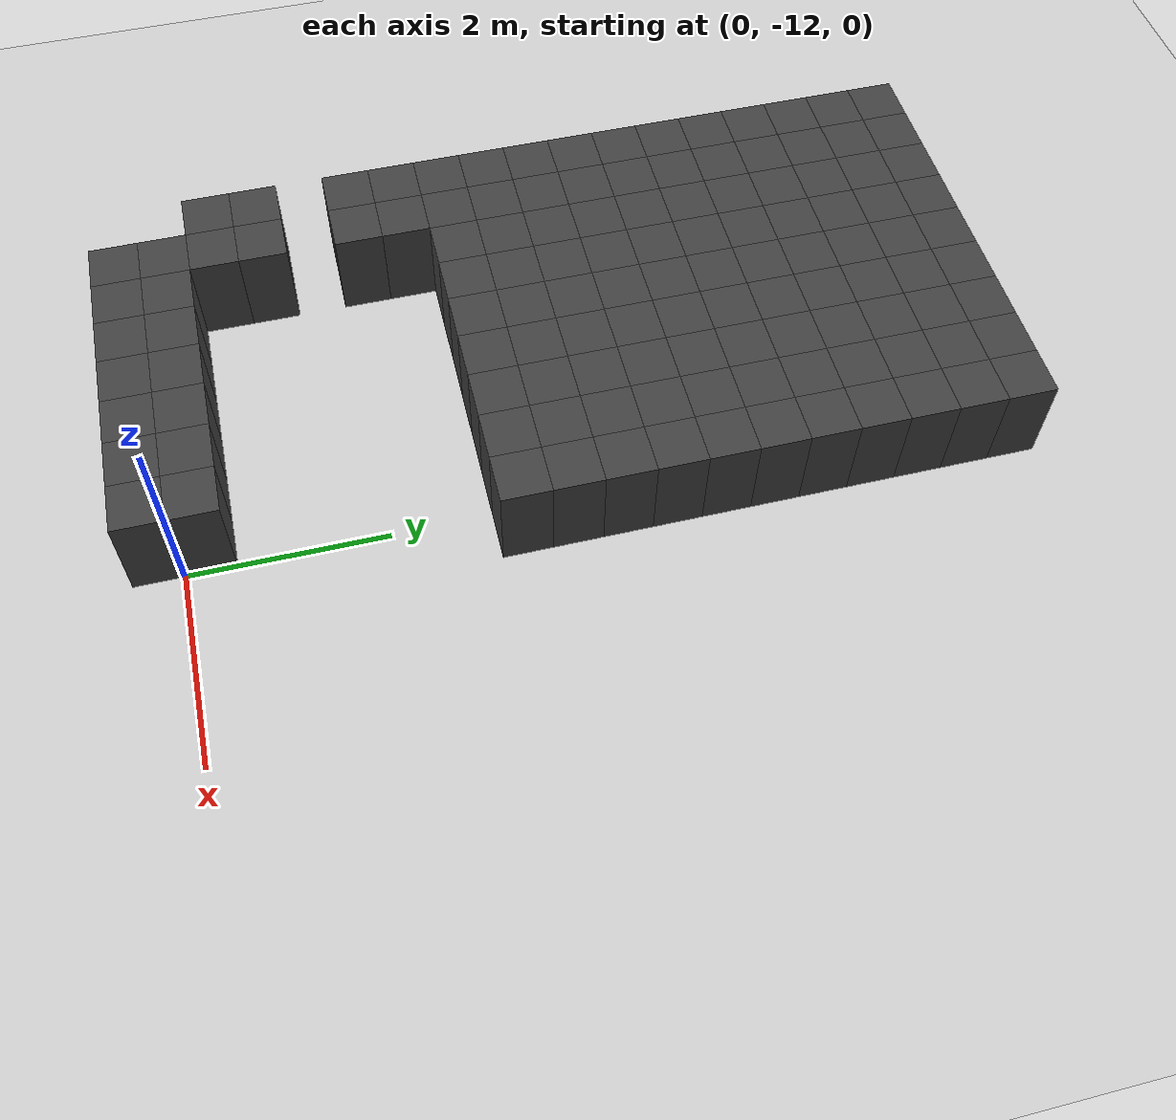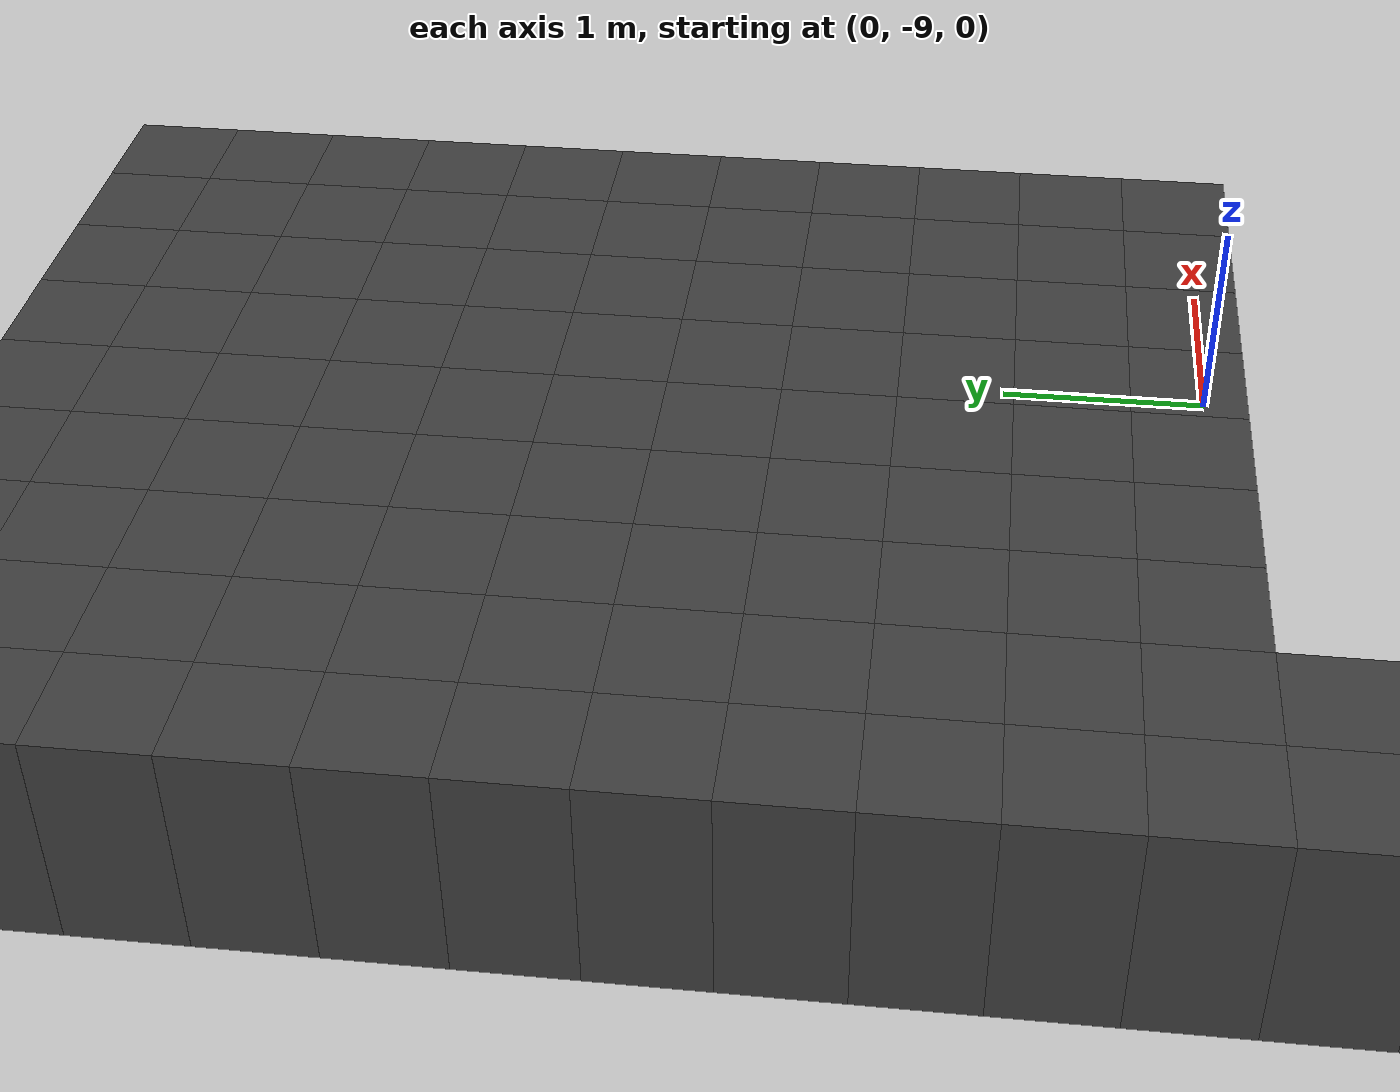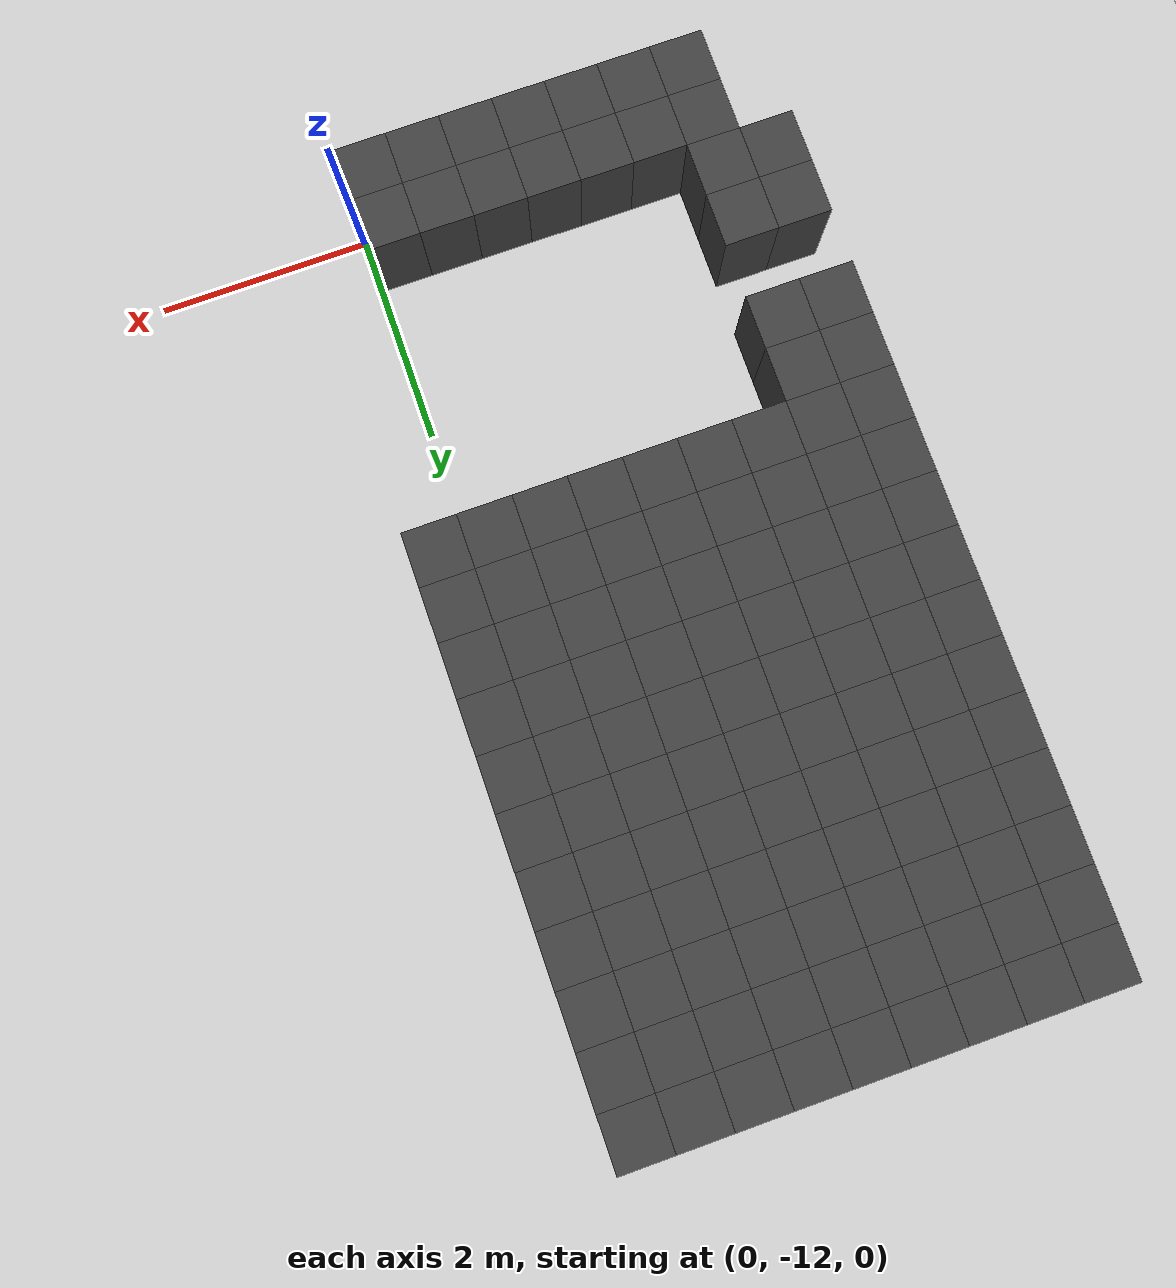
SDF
<sdf version="1.7">
 <world name="map_14510">
  <model name="ground_plane">
   <static>true</static>
   <link name="link">
    <collision name="collision">
     <geometry><plane><normal>0 0 1</normal><size>200 200</size></plane></geometry>
    </collision>
    <visual name="visual">
     <geometry><plane><normal>0 0 1</normal><size>200 200</size></plane></geometry>
     <material><ambient>0.8 0.8 0.8 1</ambient><diffuse>0.8 0.8 0.8 1</diffuse></material>
    </visual>
   </link>
  </model>
  <model name="maze_environment">
   <static>true</static>
   <link name="wall_1099">
    <pose>-3.750 -3.750 0.500 0 0 0</pose>
    <collision name="col"><geometry><box><size>0.5 0.5 1.0</size></box></geometry></collision>
    <visual name="vis">
     <geometry><box><size>0.5 0.5 1.0</size></box></geometry>
     <material><ambient>0.15 0.15 0.15 1</ambient><diffuse>0.25 0.25 0.25 1</diffuse></material>
    </visual>
   </link>
   <link name="wall_1100">
    <pose>-3.250 -3.750 0.500 0 0 0</pose>
    <collision name="col"><geometry><box><size>0.5 0.5 1.0</size></box></geometry></collision>
    <visual name="vis">
     <geometry><box><size>0.5 0.5 1.0</size></box></geometry>
     <material><ambient>0.15 0.15 0.15 1</ambient><diffuse>0.25 0.25 0.25 1</diffuse></material>
    </visual>
   </link>
   <link name="wall_1101">
    <pose>-2.750 -3.750 0.500 0 0 0</pose>
    <collision name="col"><geometry><box><size>0.5 0.5 1.0</size></box></geometry></collision>
    <visual name="vis">
     <geometry><box><size>0.5 0.5 1.0</size></box></geometry>
     <material><ambient>0.15 0.15 0.15 1</ambient><diffuse>0.25 0.25 0.25 1</diffuse></material>
    </visual>
   </link>
   <link name="wall_1102">
    <pose>-2.250 -3.750 0.500 0 0 0</pose>
    <collision name="col"><geometry><box><size>0.5 0.5 1.0</size></box></geometry></collision>
    <visual name="vis">
     <geometry><box><size>0.5 0.5 1.0</size></box></geometry>
     <material><ambient>0.15 0.15 0.15 1</ambient><diffuse>0.25 0.25 0.25 1</diffuse></material>
    </visual>
   </link>
   <link name="wall_1103">
    <pose>-1.750 -3.750 0.500 0 0 0</pose>
    <collision name="col"><geometry><box><size>0.5 0.5 1.0</size></box></geometry></collision>
    <visual name="vis">
     <geometry><box><size>0.5 0.5 1.0</size></box></geometry>
     <material><ambient>0.15 0.15 0.15 1</ambient><diffuse>0.25 0.25 0.25 1</diffuse></material>
    </visual>
   </link>
   <link name="wall_1104">
    <pose>-1.250 -3.750 0.500 0 0 0</pose>
    <collision name="col"><geometry><box><size>0.5 0.5 1.0</size></box></geometry></collision>
    <visual name="vis">
     <geometry><box><size>0.5 0.5 1.0</size></box></geometry>
     <material><ambient>0.15 0.15 0.15 1</ambient><diffuse>0.25 0.25 0.25 1</diffuse></material>
    </visual>
   </link>
   <link name="wall_1105">
    <pose>-0.750 -3.750 0.500 0 0 0</pose>
    <collision name="col"><geometry><box><size>0.5 0.5 1.0</size></box></geometry></collision>
    <visual name="vis">
     <geometry><box><size>0.5 0.5 1.0</size></box></geometry>
     <material><ambient>0.15 0.15 0.15 1</ambient><diffuse>0.25 0.25 0.25 1</diffuse></material>
    </visual>
   </link>
   <link name="wall_1106">
    <pose>-0.250 -3.750 0.500 0 0 0</pose>
    <collision name="col"><geometry><box><size>0.5 0.5 1.0</size></box></geometry></collision>
    <visual name="vis">
     <geometry><box><size>0.5 0.5 1.0</size></box></geometry>
     <material><ambient>0.15 0.15 0.15 1</ambient><diffuse>0.25 0.25 0.25 1</diffuse></material>
    </visual>
   </link>
   <link name="wall_1107">
    <pose>0.250 -3.750 0.500 0 0 0</pose>
    <collision name="col"><geometry><box><size>0.5 0.5 1.0</size></box></geometry></collision>
    <visual name="vis">
     <geometry><box><size>0.5 0.5 1.0</size></box></geometry>
     <material><ambient>0.15 0.15 0.15 1</ambient><diffuse>0.25 0.25 0.25 1</diffuse></material>
    </visual>
   </link>
   <link name="wall_1135">
    <pose>-3.750 -4.250 0.500 0 0 0</pose>
    <collision name="col"><geometry><box><size>0.5 0.5 1.0</size></box></geometry></collision>
    <visual name="vis">
     <geometry><box><size>0.5 0.5 1.0</size></box></geometry>
     <material><ambient>0.15 0.15 0.15 1</ambient><diffuse>0.25 0.25 0.25 1</diffuse></material>
    </visual>
   </link>
   <link name="wall_1136">
    <pose>-3.250 -4.250 0.500 0 0 0</pose>
    <collision name="col"><geometry><box><size>0.5 0.5 1.0</size></box></geometry></collision>
    <visual name="vis">
     <geometry><box><size>0.5 0.5 1.0</size></box></geometry>
     <material><ambient>0.15 0.15 0.15 1</ambient><diffuse>0.25 0.25 0.25 1</diffuse></material>
    </visual>
   </link>
   <link name="wall_1137">
    <pose>-2.750 -4.250 0.500 0 0 0</pose>
    <collision name="col"><geometry><box><size>0.5 0.5 1.0</size></box></geometry></collision>
    <visual name="vis">
     <geometry><box><size>0.5 0.5 1.0</size></box></geometry>
     <material><ambient>0.15 0.15 0.15 1</ambient><diffuse>0.25 0.25 0.25 1</diffuse></material>
    </visual>
   </link>
   <link name="wall_1138">
    <pose>-2.250 -4.250 0.500 0 0 0</pose>
    <collision name="col"><geometry><box><size>0.5 0.5 1.0</size></box></geometry></collision>
    <visual name="vis">
     <geometry><box><size>0.5 0.5 1.0</size></box></geometry>
     <material><ambient>0.15 0.15 0.15 1</ambient><diffuse>0.25 0.25 0.25 1</diffuse></material>
    </visual>
   </link>
   <link name="wall_1139">
    <pose>-1.750 -4.250 0.500 0 0 0</pose>
    <collision name="col"><geometry><box><size>0.5 0.5 1.0</size></box></geometry></collision>
    <visual name="vis">
     <geometry><box><size>0.5 0.5 1.0</size></box></geometry>
     <material><ambient>0.15 0.15 0.15 1</ambient><diffuse>0.25 0.25 0.25 1</diffuse></material>
    </visual>
   </link>
   <link name="wall_1140">
    <pose>-1.250 -4.250 0.500 0 0 0</pose>
    <collision name="col"><geometry><box><size>0.5 0.5 1.0</size></box></geometry></collision>
    <visual name="vis">
     <geometry><box><size>0.5 0.5 1.0</size></box></geometry>
     <material><ambient>0.15 0.15 0.15 1</ambient><diffuse>0.25 0.25 0.25 1</diffuse></material>
    </visual>
   </link>
   <link name="wall_1141">
    <pose>-0.750 -4.250 0.500 0 0 0</pose>
    <collision name="col"><geometry><box><size>0.5 0.5 1.0</size></box></geometry></collision>
    <visual name="vis">
     <geometry><box><size>0.5 0.5 1.0</size></box></geometry>
     <material><ambient>0.15 0.15 0.15 1</ambient><diffuse>0.25 0.25 0.25 1</diffuse></material>
    </visual>
   </link>
   <link name="wall_1142">
    <pose>-0.250 -4.250 0.500 0 0 0</pose>
    <collision name="col"><geometry><box><size>0.5 0.5 1.0</size></box></geometry></collision>
    <visual name="vis">
     <geometry><box><size>0.5 0.5 1.0</size></box></geometry>
     <material><ambient>0.15 0.15 0.15 1</ambient><diffuse>0.25 0.25 0.25 1</diffuse></material>
    </visual>
   </link>
   <link name="wall_1143">
    <pose>0.250 -4.250 0.500 0 0 0</pose>
    <collision name="col"><geometry><box><size>0.5 0.5 1.0</size></box></geometry></collision>
    <visual name="vis">
     <geometry><box><size>0.5 0.5 1.0</size></box></geometry>
     <material><ambient>0.15 0.15 0.15 1</ambient><diffuse>0.25 0.25 0.25 1</diffuse></material>
    </visual>
   </link>
   <link name="wall_1183">
    <pose>-3.750 -4.750 0.500 0 0 0</pose>
    <collision name="col"><geometry><box><size>0.5 0.5 1.0</size></box></geometry></collision>
    <visual name="vis">
     <geometry><box><size>0.5 0.5 1.0</size></box></geometry>
     <material><ambient>0.15 0.15 0.15 1</ambient><diffuse>0.25 0.25 0.25 1</diffuse></material>
    </visual>
   </link>
   <link name="wall_1184">
    <pose>-3.250 -4.750 0.500 0 0 0</pose>
    <collision name="col"><geometry><box><size>0.5 0.5 1.0</size></box></geometry></collision>
    <visual name="vis">
     <geometry><box><size>0.5 0.5 1.0</size></box></geometry>
     <material><ambient>0.15 0.15 0.15 1</ambient><diffuse>0.25 0.25 0.25 1</diffuse></material>
    </visual>
   </link>
   <link name="wall_1185">
    <pose>-2.750 -4.750 0.500 0 0 0</pose>
    <collision name="col"><geometry><box><size>0.5 0.5 1.0</size></box></geometry></collision>
    <visual name="vis">
     <geometry><box><size>0.5 0.5 1.0</size></box></geometry>
     <material><ambient>0.15 0.15 0.15 1</ambient><diffuse>0.25 0.25 0.25 1</diffuse></material>
    </visual>
   </link>
   <link name="wall_1186">
    <pose>-2.250 -4.750 0.500 0 0 0</pose>
    <collision name="col"><geometry><box><size>0.5 0.5 1.0</size></box></geometry></collision>
    <visual name="vis">
     <geometry><box><size>0.5 0.5 1.0</size></box></geometry>
     <material><ambient>0.15 0.15 0.15 1</ambient><diffuse>0.25 0.25 0.25 1</diffuse></material>
    </visual>
   </link>
   <link name="wall_1187">
    <pose>-1.750 -4.750 0.500 0 0 0</pose>
    <collision name="col"><geometry><box><size>0.5 0.5 1.0</size></box></geometry></collision>
    <visual name="vis">
     <geometry><box><size>0.5 0.5 1.0</size></box></geometry>
     <material><ambient>0.15 0.15 0.15 1</ambient><diffuse>0.25 0.25 0.25 1</diffuse></material>
    </visual>
   </link>
   <link name="wall_1188">
    <pose>-1.250 -4.750 0.500 0 0 0</pose>
    <collision name="col"><geometry><box><size>0.5 0.5 1.0</size></box></geometry></collision>
    <visual name="vis">
     <geometry><box><size>0.5 0.5 1.0</size></box></geometry>
     <material><ambient>0.15 0.15 0.15 1</ambient><diffuse>0.25 0.25 0.25 1</diffuse></material>
    </visual>
   </link>
   <link name="wall_1189">
    <pose>-0.750 -4.750 0.500 0 0 0</pose>
    <collision name="col"><geometry><box><size>0.5 0.5 1.0</size></box></geometry></collision>
    <visual name="vis">
     <geometry><box><size>0.5 0.5 1.0</size></box></geometry>
     <material><ambient>0.15 0.15 0.15 1</ambient><diffuse>0.25 0.25 0.25 1</diffuse></material>
    </visual>
   </link>
   <link name="wall_1190">
    <pose>-0.250 -4.750 0.500 0 0 0</pose>
    <collision name="col"><geometry><box><size>0.5 0.5 1.0</size></box></geometry></collision>
    <visual name="vis">
     <geometry><box><size>0.5 0.5 1.0</size></box></geometry>
     <material><ambient>0.15 0.15 0.15 1</ambient><diffuse>0.25 0.25 0.25 1</diffuse></material>
    </visual>
   </link>
   <link name="wall_1191">
    <pose>0.250 -4.750 0.500 0 0 0</pose>
    <collision name="col"><geometry><box><size>0.5 0.5 1.0</size></box></geometry></collision>
    <visual name="vis">
     <geometry><box><size>0.5 0.5 1.0</size></box></geometry>
     <material><ambient>0.15 0.15 0.15 1</ambient><diffuse>0.25 0.25 0.25 1</diffuse></material>
    </visual>
   </link>
   <link name="wall_1231">
    <pose>-3.750 -5.250 0.500 0 0 0</pose>
    <collision name="col"><geometry><box><size>0.5 0.5 1.0</size></box></geometry></collision>
    <visual name="vis">
     <geometry><box><size>0.5 0.5 1.0</size></box></geometry>
     <material><ambient>0.15 0.15 0.15 1</ambient><diffuse>0.25 0.25 0.25 1</diffuse></material>
    </visual>
   </link>
   <link name="wall_1232">
    <pose>-3.250 -5.250 0.500 0 0 0</pose>
    <collision name="col"><geometry><box><size>0.5 0.5 1.0</size></box></geometry></collision>
    <visual name="vis">
     <geometry><box><size>0.5 0.5 1.0</size></box></geometry>
     <material><ambient>0.15 0.15 0.15 1</ambient><diffuse>0.25 0.25 0.25 1</diffuse></material>
    </visual>
   </link>
   <link name="wall_1233">
    <pose>-2.750 -5.250 0.500 0 0 0</pose>
    <collision name="col"><geometry><box><size>0.5 0.5 1.0</size></box></geometry></collision>
    <visual name="vis">
     <geometry><box><size>0.5 0.5 1.0</size></box></geometry>
     <material><ambient>0.15 0.15 0.15 1</ambient><diffuse>0.25 0.25 0.25 1</diffuse></material>
    </visual>
   </link>
   <link name="wall_1234">
    <pose>-2.250 -5.250 0.500 0 0 0</pose>
    <collision name="col"><geometry><box><size>0.5 0.5 1.0</size></box></geometry></collision>
    <visual name="vis">
     <geometry><box><size>0.5 0.5 1.0</size></box></geometry>
     <material><ambient>0.15 0.15 0.15 1</ambient><diffuse>0.25 0.25 0.25 1</diffuse></material>
    </visual>
   </link>
   <link name="wall_1235">
    <pose>-1.750 -5.250 0.500 0 0 0</pose>
    <collision name="col"><geometry><box><size>0.5 0.5 1.0</size></box></geometry></collision>
    <visual name="vis">
     <geometry><box><size>0.5 0.5 1.0</size></box></geometry>
     <material><ambient>0.15 0.15 0.15 1</ambient><diffuse>0.25 0.25 0.25 1</diffuse></material>
    </visual>
   </link>
   <link name="wall_1236">
    <pose>-1.250 -5.250 0.500 0 0 0</pose>
    <collision name="col"><geometry><box><size>0.5 0.5 1.0</size></box></geometry></collision>
    <visual name="vis">
     <geometry><box><size>0.5 0.5 1.0</size></box></geometry>
     <material><ambient>0.15 0.15 0.15 1</ambient><diffuse>0.25 0.25 0.25 1</diffuse></material>
    </visual>
   </link>
   <link name="wall_1237">
    <pose>-0.750 -5.250 0.500 0 0 0</pose>
    <collision name="col"><geometry><box><size>0.5 0.5 1.0</size></box></geometry></collision>
    <visual name="vis">
     <geometry><box><size>0.5 0.5 1.0</size></box></geometry>
     <material><ambient>0.15 0.15 0.15 1</ambient><diffuse>0.25 0.25 0.25 1</diffuse></material>
    </visual>
   </link>
   <link name="wall_1238">
    <pose>-0.250 -5.250 0.500 0 0 0</pose>
    <collision name="col"><geometry><box><size>0.5 0.5 1.0</size></box></geometry></collision>
    <visual name="vis">
     <geometry><box><size>0.5 0.5 1.0</size></box></geometry>
     <material><ambient>0.15 0.15 0.15 1</ambient><diffuse>0.25 0.25 0.25 1</diffuse></material>
    </visual>
   </link>
   <link name="wall_1239">
    <pose>0.250 -5.250 0.500 0 0 0</pose>
    <collision name="col"><geometry><box><size>0.5 0.5 1.0</size></box></geometry></collision>
    <visual name="vis">
     <geometry><box><size>0.5 0.5 1.0</size></box></geometry>
     <material><ambient>0.15 0.15 0.15 1</ambient><diffuse>0.25 0.25 0.25 1</diffuse></material>
    </visual>
   </link>
   <link name="wall_1272">
    <pose>-3.750 -5.750 0.500 0 0 0</pose>
    <collision name="col"><geometry><box><size>0.5 0.5 1.0</size></box></geometry></collision>
    <visual name="vis">
     <geometry><box><size>0.5 0.5 1.0</size></box></geometry>
     <material><ambient>0.15 0.15 0.15 1</ambient><diffuse>0.25 0.25 0.25 1</diffuse></material>
    </visual>
   </link>
   <link name="wall_1273">
    <pose>-3.250 -5.750 0.500 0 0 0</pose>
    <collision name="col"><geometry><box><size>0.5 0.5 1.0</size></box></geometry></collision>
    <visual name="vis">
     <geometry><box><size>0.5 0.5 1.0</size></box></geometry>
     <material><ambient>0.15 0.15 0.15 1</ambient><diffuse>0.25 0.25 0.25 1</diffuse></material>
    </visual>
   </link>
   <link name="wall_1274">
    <pose>-2.750 -5.750 0.500 0 0 0</pose>
    <collision name="col"><geometry><box><size>0.5 0.5 1.0</size></box></geometry></collision>
    <visual name="vis">
     <geometry><box><size>0.5 0.5 1.0</size></box></geometry>
     <material><ambient>0.15 0.15 0.15 1</ambient><diffuse>0.25 0.25 0.25 1</diffuse></material>
    </visual>
   </link>
   <link name="wall_1275">
    <pose>-2.250 -5.750 0.500 0 0 0</pose>
    <collision name="col"><geometry><box><size>0.5 0.5 1.0</size></box></geometry></collision>
    <visual name="vis">
     <geometry><box><size>0.5 0.5 1.0</size></box></geometry>
     <material><ambient>0.15 0.15 0.15 1</ambient><diffuse>0.25 0.25 0.25 1</diffuse></material>
    </visual>
   </link>
   <link name="wall_1276">
    <pose>-1.750 -5.750 0.500 0 0 0</pose>
    <collision name="col"><geometry><box><size>0.5 0.5 1.0</size></box></geometry></collision>
    <visual name="vis">
     <geometry><box><size>0.5 0.5 1.0</size></box></geometry>
     <material><ambient>0.15 0.15 0.15 1</ambient><diffuse>0.25 0.25 0.25 1</diffuse></material>
    </visual>
   </link>
   <link name="wall_1277">
    <pose>-1.250 -5.750 0.500 0 0 0</pose>
    <collision name="col"><geometry><box><size>0.5 0.5 1.0</size></box></geometry></collision>
    <visual name="vis">
     <geometry><box><size>0.5 0.5 1.0</size></box></geometry>
     <material><ambient>0.15 0.15 0.15 1</ambient><diffuse>0.25 0.25 0.25 1</diffuse></material>
    </visual>
   </link>
   <link name="wall_1278">
    <pose>-0.750 -5.750 0.500 0 0 0</pose>
    <collision name="col"><geometry><box><size>0.5 0.5 1.0</size></box></geometry></collision>
    <visual name="vis">
     <geometry><box><size>0.5 0.5 1.0</size></box></geometry>
     <material><ambient>0.15 0.15 0.15 1</ambient><diffuse>0.25 0.25 0.25 1</diffuse></material>
    </visual>
   </link>
   <link name="wall_1279">
    <pose>-0.250 -5.750 0.500 0 0 0</pose>
    <collision name="col"><geometry><box><size>0.5 0.5 1.0</size></box></geometry></collision>
    <visual name="vis">
     <geometry><box><size>0.5 0.5 1.0</size></box></geometry>
     <material><ambient>0.15 0.15 0.15 1</ambient><diffuse>0.25 0.25 0.25 1</diffuse></material>
    </visual>
   </link>
   <link name="wall_1280">
    <pose>0.250 -5.750 0.500 0 0 0</pose>
    <collision name="col"><geometry><box><size>0.5 0.5 1.0</size></box></geometry></collision>
    <visual name="vis">
     <geometry><box><size>0.5 0.5 1.0</size></box></geometry>
     <material><ambient>0.15 0.15 0.15 1</ambient><diffuse>0.25 0.25 0.25 1</diffuse></material>
    </visual>
   </link>
   <link name="wall_1313">
    <pose>-3.750 -6.250 0.500 0 0 0</pose>
    <collision name="col"><geometry><box><size>0.5 0.5 1.0</size></box></geometry></collision>
    <visual name="vis">
     <geometry><box><size>0.5 0.5 1.0</size></box></geometry>
     <material><ambient>0.15 0.15 0.15 1</ambient><diffuse>0.25 0.25 0.25 1</diffuse></material>
    </visual>
   </link>
   <link name="wall_1314">
    <pose>-3.250 -6.250 0.500 0 0 0</pose>
    <collision name="col"><geometry><box><size>0.5 0.5 1.0</size></box></geometry></collision>
    <visual name="vis">
     <geometry><box><size>0.5 0.5 1.0</size></box></geometry>
     <material><ambient>0.15 0.15 0.15 1</ambient><diffuse>0.25 0.25 0.25 1</diffuse></material>
    </visual>
   </link>
   <link name="wall_1315">
    <pose>-2.750 -6.250 0.500 0 0 0</pose>
    <collision name="col"><geometry><box><size>0.5 0.5 1.0</size></box></geometry></collision>
    <visual name="vis">
     <geometry><box><size>0.5 0.5 1.0</size></box></geometry>
     <material><ambient>0.15 0.15 0.15 1</ambient><diffuse>0.25 0.25 0.25 1</diffuse></material>
    </visual>
   </link>
   <link name="wall_1316">
    <pose>-2.250 -6.250 0.500 0 0 0</pose>
    <collision name="col"><geometry><box><size>0.5 0.5 1.0</size></box></geometry></collision>
    <visual name="vis">
     <geometry><box><size>0.5 0.5 1.0</size></box></geometry>
     <material><ambient>0.15 0.15 0.15 1</ambient><diffuse>0.25 0.25 0.25 1</diffuse></material>
    </visual>
   </link>
   <link name="wall_1317">
    <pose>-1.750 -6.250 0.500 0 0 0</pose>
    <collision name="col"><geometry><box><size>0.5 0.5 1.0</size></box></geometry></collision>
    <visual name="vis">
     <geometry><box><size>0.5 0.5 1.0</size></box></geometry>
     <material><ambient>0.15 0.15 0.15 1</ambient><diffuse>0.25 0.25 0.25 1</diffuse></material>
    </visual>
   </link>
   <link name="wall_1318">
    <pose>-1.250 -6.250 0.500 0 0 0</pose>
    <collision name="col"><geometry><box><size>0.5 0.5 1.0</size></box></geometry></collision>
    <visual name="vis">
     <geometry><box><size>0.5 0.5 1.0</size></box></geometry>
     <material><ambient>0.15 0.15 0.15 1</ambient><diffuse>0.25 0.25 0.25 1</diffuse></material>
    </visual>
   </link>
   <link name="wall_1319">
    <pose>-0.750 -6.250 0.500 0 0 0</pose>
    <collision name="col"><geometry><box><size>0.5 0.5 1.0</size></box></geometry></collision>
    <visual name="vis">
     <geometry><box><size>0.5 0.5 1.0</size></box></geometry>
     <material><ambient>0.15 0.15 0.15 1</ambient><diffuse>0.25 0.25 0.25 1</diffuse></material>
    </visual>
   </link>
   <link name="wall_1320">
    <pose>-0.250 -6.250 0.500 0 0 0</pose>
    <collision name="col"><geometry><box><size>0.5 0.5 1.0</size></box></geometry></collision>
    <visual name="vis">
     <geometry><box><size>0.5 0.5 1.0</size></box></geometry>
     <material><ambient>0.15 0.15 0.15 1</ambient><diffuse>0.25 0.25 0.25 1</diffuse></material>
    </visual>
   </link>
   <link name="wall_1321">
    <pose>0.250 -6.250 0.500 0 0 0</pose>
    <collision name="col"><geometry><box><size>0.5 0.5 1.0</size></box></geometry></collision>
    <visual name="vis">
     <geometry><box><size>0.5 0.5 1.0</size></box></geometry>
     <material><ambient>0.15 0.15 0.15 1</ambient><diffuse>0.25 0.25 0.25 1</diffuse></material>
    </visual>
   </link>
   <link name="wall_1348">
    <pose>-3.750 -6.750 0.500 0 0 0</pose>
    <collision name="col"><geometry><box><size>0.5 0.5 1.0</size></box></geometry></collision>
    <visual name="vis">
     <geometry><box><size>0.5 0.5 1.0</size></box></geometry>
     <material><ambient>0.15 0.15 0.15 1</ambient><diffuse>0.25 0.25 0.25 1</diffuse></material>
    </visual>
   </link>
   <link name="wall_1349">
    <pose>-3.250 -6.750 0.500 0 0 0</pose>
    <collision name="col"><geometry><box><size>0.5 0.5 1.0</size></box></geometry></collision>
    <visual name="vis">
     <geometry><box><size>0.5 0.5 1.0</size></box></geometry>
     <material><ambient>0.15 0.15 0.15 1</ambient><diffuse>0.25 0.25 0.25 1</diffuse></material>
    </visual>
   </link>
   <link name="wall_1350">
    <pose>-2.750 -6.750 0.500 0 0 0</pose>
    <collision name="col"><geometry><box><size>0.5 0.5 1.0</size></box></geometry></collision>
    <visual name="vis">
     <geometry><box><size>0.5 0.5 1.0</size></box></geometry>
     <material><ambient>0.15 0.15 0.15 1</ambient><diffuse>0.25 0.25 0.25 1</diffuse></material>
    </visual>
   </link>
   <link name="wall_1351">
    <pose>-2.250 -6.750 0.500 0 0 0</pose>
    <collision name="col"><geometry><box><size>0.5 0.5 1.0</size></box></geometry></collision>
    <visual name="vis">
     <geometry><box><size>0.5 0.5 1.0</size></box></geometry>
     <material><ambient>0.15 0.15 0.15 1</ambient><diffuse>0.25 0.25 0.25 1</diffuse></material>
    </visual>
   </link>
   <link name="wall_1352">
    <pose>-1.750 -6.750 0.500 0 0 0</pose>
    <collision name="col"><geometry><box><size>0.5 0.5 1.0</size></box></geometry></collision>
    <visual name="vis">
     <geometry><box><size>0.5 0.5 1.0</size></box></geometry>
     <material><ambient>0.15 0.15 0.15 1</ambient><diffuse>0.25 0.25 0.25 1</diffuse></material>
    </visual>
   </link>
   <link name="wall_1353">
    <pose>-1.250 -6.750 0.500 0 0 0</pose>
    <collision name="col"><geometry><box><size>0.5 0.5 1.0</size></box></geometry></collision>
    <visual name="vis">
     <geometry><box><size>0.5 0.5 1.0</size></box></geometry>
     <material><ambient>0.15 0.15 0.15 1</ambient><diffuse>0.25 0.25 0.25 1</diffuse></material>
    </visual>
   </link>
   <link name="wall_1354">
    <pose>-0.750 -6.750 0.500 0 0 0</pose>
    <collision name="col"><geometry><box><size>0.5 0.5 1.0</size></box></geometry></collision>
    <visual name="vis">
     <geometry><box><size>0.5 0.5 1.0</size></box></geometry>
     <material><ambient>0.15 0.15 0.15 1</ambient><diffuse>0.25 0.25 0.25 1</diffuse></material>
    </visual>
   </link>
   <link name="wall_1355">
    <pose>-0.250 -6.750 0.500 0 0 0</pose>
    <collision name="col"><geometry><box><size>0.5 0.5 1.0</size></box></geometry></collision>
    <visual name="vis">
     <geometry><box><size>0.5 0.5 1.0</size></box></geometry>
     <material><ambient>0.15 0.15 0.15 1</ambient><diffuse>0.25 0.25 0.25 1</diffuse></material>
    </visual>
   </link>
   <link name="wall_1356">
    <pose>0.250 -6.750 0.500 0 0 0</pose>
    <collision name="col"><geometry><box><size>0.5 0.5 1.0</size></box></geometry></collision>
    <visual name="vis">
     <geometry><box><size>0.5 0.5 1.0</size></box></geometry>
     <material><ambient>0.15 0.15 0.15 1</ambient><diffuse>0.25 0.25 0.25 1</diffuse></material>
    </visual>
   </link>
   <link name="wall_1383">
    <pose>-3.750 -7.250 0.500 0 0 0</pose>
    <collision name="col"><geometry><box><size>0.5 0.5 1.0</size></box></geometry></collision>
    <visual name="vis">
     <geometry><box><size>0.5 0.5 1.0</size></box></geometry>
     <material><ambient>0.15 0.15 0.15 1</ambient><diffuse>0.25 0.25 0.25 1</diffuse></material>
    </visual>
   </link>
   <link name="wall_1384">
    <pose>-3.250 -7.250 0.500 0 0 0</pose>
    <collision name="col"><geometry><box><size>0.5 0.5 1.0</size></box></geometry></collision>
    <visual name="vis">
     <geometry><box><size>0.5 0.5 1.0</size></box></geometry>
     <material><ambient>0.15 0.15 0.15 1</ambient><diffuse>0.25 0.25 0.25 1</diffuse></material>
    </visual>
   </link>
   <link name="wall_1385">
    <pose>-2.750 -7.250 0.500 0 0 0</pose>
    <collision name="col"><geometry><box><size>0.5 0.5 1.0</size></box></geometry></collision>
    <visual name="vis">
     <geometry><box><size>0.5 0.5 1.0</size></box></geometry>
     <material><ambient>0.15 0.15 0.15 1</ambient><diffuse>0.25 0.25 0.25 1</diffuse></material>
    </visual>
   </link>
   <link name="wall_1386">
    <pose>-2.250 -7.250 0.500 0 0 0</pose>
    <collision name="col"><geometry><box><size>0.5 0.5 1.0</size></box></geometry></collision>
    <visual name="vis">
     <geometry><box><size>0.5 0.5 1.0</size></box></geometry>
     <material><ambient>0.15 0.15 0.15 1</ambient><diffuse>0.25 0.25 0.25 1</diffuse></material>
    </visual>
   </link>
   <link name="wall_1387">
    <pose>-1.750 -7.250 0.500 0 0 0</pose>
    <collision name="col"><geometry><box><size>0.5 0.5 1.0</size></box></geometry></collision>
    <visual name="vis">
     <geometry><box><size>0.5 0.5 1.0</size></box></geometry>
     <material><ambient>0.15 0.15 0.15 1</ambient><diffuse>0.25 0.25 0.25 1</diffuse></material>
    </visual>
   </link>
   <link name="wall_1388">
    <pose>-1.250 -7.250 0.500 0 0 0</pose>
    <collision name="col"><geometry><box><size>0.5 0.5 1.0</size></box></geometry></collision>
    <visual name="vis">
     <geometry><box><size>0.5 0.5 1.0</size></box></geometry>
     <material><ambient>0.15 0.15 0.15 1</ambient><diffuse>0.25 0.25 0.25 1</diffuse></material>
    </visual>
   </link>
   <link name="wall_1389">
    <pose>-0.750 -7.250 0.500 0 0 0</pose>
    <collision name="col"><geometry><box><size>0.5 0.5 1.0</size></box></geometry></collision>
    <visual name="vis">
     <geometry><box><size>0.5 0.5 1.0</size></box></geometry>
     <material><ambient>0.15 0.15 0.15 1</ambient><diffuse>0.25 0.25 0.25 1</diffuse></material>
    </visual>
   </link>
   <link name="wall_1390">
    <pose>-0.250 -7.250 0.500 0 0 0</pose>
    <collision name="col"><geometry><box><size>0.5 0.5 1.0</size></box></geometry></collision>
    <visual name="vis">
     <geometry><box><size>0.5 0.5 1.0</size></box></geometry>
     <material><ambient>0.15 0.15 0.15 1</ambient><diffuse>0.25 0.25 0.25 1</diffuse></material>
    </visual>
   </link>
   <link name="wall_1391">
    <pose>0.250 -7.250 0.500 0 0 0</pose>
    <collision name="col"><geometry><box><size>0.5 0.5 1.0</size></box></geometry></collision>
    <visual name="vis">
     <geometry><box><size>0.5 0.5 1.0</size></box></geometry>
     <material><ambient>0.15 0.15 0.15 1</ambient><diffuse>0.25 0.25 0.25 1</diffuse></material>
    </visual>
   </link>
   <link name="wall_1413">
    <pose>-3.750 -7.750 0.500 0 0 0</pose>
    <collision name="col"><geometry><box><size>0.5 0.5 1.0</size></box></geometry></collision>
    <visual name="vis">
     <geometry><box><size>0.5 0.5 1.0</size></box></geometry>
     <material><ambient>0.15 0.15 0.15 1</ambient><diffuse>0.25 0.25 0.25 1</diffuse></material>
    </visual>
   </link>
   <link name="wall_1414">
    <pose>-3.250 -7.750 0.500 0 0 0</pose>
    <collision name="col"><geometry><box><size>0.5 0.5 1.0</size></box></geometry></collision>
    <visual name="vis">
     <geometry><box><size>0.5 0.5 1.0</size></box></geometry>
     <material><ambient>0.15 0.15 0.15 1</ambient><diffuse>0.25 0.25 0.25 1</diffuse></material>
    </visual>
   </link>
   <link name="wall_1415">
    <pose>-2.750 -7.750 0.500 0 0 0</pose>
    <collision name="col"><geometry><box><size>0.5 0.5 1.0</size></box></geometry></collision>
    <visual name="vis">
     <geometry><box><size>0.5 0.5 1.0</size></box></geometry>
     <material><ambient>0.15 0.15 0.15 1</ambient><diffuse>0.25 0.25 0.25 1</diffuse></material>
    </visual>
   </link>
   <link name="wall_1416">
    <pose>-2.250 -7.750 0.500 0 0 0</pose>
    <collision name="col"><geometry><box><size>0.5 0.5 1.0</size></box></geometry></collision>
    <visual name="vis">
     <geometry><box><size>0.5 0.5 1.0</size></box></geometry>
     <material><ambient>0.15 0.15 0.15 1</ambient><diffuse>0.25 0.25 0.25 1</diffuse></material>
    </visual>
   </link>
   <link name="wall_1417">
    <pose>-1.750 -7.750 0.500 0 0 0</pose>
    <collision name="col"><geometry><box><size>0.5 0.5 1.0</size></box></geometry></collision>
    <visual name="vis">
     <geometry><box><size>0.5 0.5 1.0</size></box></geometry>
     <material><ambient>0.15 0.15 0.15 1</ambient><diffuse>0.25 0.25 0.25 1</diffuse></material>
    </visual>
   </link>
   <link name="wall_1418">
    <pose>-1.250 -7.750 0.500 0 0 0</pose>
    <collision name="col"><geometry><box><size>0.5 0.5 1.0</size></box></geometry></collision>
    <visual name="vis">
     <geometry><box><size>0.5 0.5 1.0</size></box></geometry>
     <material><ambient>0.15 0.15 0.15 1</ambient><diffuse>0.25 0.25 0.25 1</diffuse></material>
    </visual>
   </link>
   <link name="wall_1419">
    <pose>-0.750 -7.750 0.500 0 0 0</pose>
    <collision name="col"><geometry><box><size>0.5 0.5 1.0</size></box></geometry></collision>
    <visual name="vis">
     <geometry><box><size>0.5 0.5 1.0</size></box></geometry>
     <material><ambient>0.15 0.15 0.15 1</ambient><diffuse>0.25 0.25 0.25 1</diffuse></material>
    </visual>
   </link>
   <link name="wall_1420">
    <pose>-0.250 -7.750 0.500 0 0 0</pose>
    <collision name="col"><geometry><box><size>0.5 0.5 1.0</size></box></geometry></collision>
    <visual name="vis">
     <geometry><box><size>0.5 0.5 1.0</size></box></geometry>
     <material><ambient>0.15 0.15 0.15 1</ambient><diffuse>0.25 0.25 0.25 1</diffuse></material>
    </visual>
   </link>
   <link name="wall_1421">
    <pose>0.250 -7.750 0.500 0 0 0</pose>
    <collision name="col"><geometry><box><size>0.5 0.5 1.0</size></box></geometry></collision>
    <visual name="vis">
     <geometry><box><size>0.5 0.5 1.0</size></box></geometry>
     <material><ambient>0.15 0.15 0.15 1</ambient><diffuse>0.25 0.25 0.25 1</diffuse></material>
    </visual>
   </link>
   <link name="wall_1456">
    <pose>-3.750 -8.250 0.500 0 0 0</pose>
    <collision name="col"><geometry><box><size>0.5 0.5 1.0</size></box></geometry></collision>
    <visual name="vis">
     <geometry><box><size>0.5 0.5 1.0</size></box></geometry>
     <material><ambient>0.15 0.15 0.15 1</ambient><diffuse>0.25 0.25 0.25 1</diffuse></material>
    </visual>
   </link>
   <link name="wall_1457">
    <pose>-3.250 -8.250 0.500 0 0 0</pose>
    <collision name="col"><geometry><box><size>0.5 0.5 1.0</size></box></geometry></collision>
    <visual name="vis">
     <geometry><box><size>0.5 0.5 1.0</size></box></geometry>
     <material><ambient>0.15 0.15 0.15 1</ambient><diffuse>0.25 0.25 0.25 1</diffuse></material>
    </visual>
   </link>
   <link name="wall_1458">
    <pose>-2.750 -8.250 0.500 0 0 0</pose>
    <collision name="col"><geometry><box><size>0.5 0.5 1.0</size></box></geometry></collision>
    <visual name="vis">
     <geometry><box><size>0.5 0.5 1.0</size></box></geometry>
     <material><ambient>0.15 0.15 0.15 1</ambient><diffuse>0.25 0.25 0.25 1</diffuse></material>
    </visual>
   </link>
   <link name="wall_1459">
    <pose>-2.250 -8.250 0.500 0 0 0</pose>
    <collision name="col"><geometry><box><size>0.5 0.5 1.0</size></box></geometry></collision>
    <visual name="vis">
     <geometry><box><size>0.5 0.5 1.0</size></box></geometry>
     <material><ambient>0.15 0.15 0.15 1</ambient><diffuse>0.25 0.25 0.25 1</diffuse></material>
    </visual>
   </link>
   <link name="wall_1460">
    <pose>-1.750 -8.250 0.500 0 0 0</pose>
    <collision name="col"><geometry><box><size>0.5 0.5 1.0</size></box></geometry></collision>
    <visual name="vis">
     <geometry><box><size>0.5 0.5 1.0</size></box></geometry>
     <material><ambient>0.15 0.15 0.15 1</ambient><diffuse>0.25 0.25 0.25 1</diffuse></material>
    </visual>
   </link>
   <link name="wall_1461">
    <pose>-1.250 -8.250 0.500 0 0 0</pose>
    <collision name="col"><geometry><box><size>0.5 0.5 1.0</size></box></geometry></collision>
    <visual name="vis">
     <geometry><box><size>0.5 0.5 1.0</size></box></geometry>
     <material><ambient>0.15 0.15 0.15 1</ambient><diffuse>0.25 0.25 0.25 1</diffuse></material>
    </visual>
   </link>
   <link name="wall_1462">
    <pose>-0.750 -8.250 0.500 0 0 0</pose>
    <collision name="col"><geometry><box><size>0.5 0.5 1.0</size></box></geometry></collision>
    <visual name="vis">
     <geometry><box><size>0.5 0.5 1.0</size></box></geometry>
     <material><ambient>0.15 0.15 0.15 1</ambient><diffuse>0.25 0.25 0.25 1</diffuse></material>
    </visual>
   </link>
   <link name="wall_1463">
    <pose>-0.250 -8.250 0.500 0 0 0</pose>
    <collision name="col"><geometry><box><size>0.5 0.5 1.0</size></box></geometry></collision>
    <visual name="vis">
     <geometry><box><size>0.5 0.5 1.0</size></box></geometry>
     <material><ambient>0.15 0.15 0.15 1</ambient><diffuse>0.25 0.25 0.25 1</diffuse></material>
    </visual>
   </link>
   <link name="wall_1464">
    <pose>0.250 -8.250 0.500 0 0 0</pose>
    <collision name="col"><geometry><box><size>0.5 0.5 1.0</size></box></geometry></collision>
    <visual name="vis">
     <geometry><box><size>0.5 0.5 1.0</size></box></geometry>
     <material><ambient>0.15 0.15 0.15 1</ambient><diffuse>0.25 0.25 0.25 1</diffuse></material>
    </visual>
   </link>
   <link name="wall_1504">
    <pose>-3.750 -8.750 0.500 0 0 0</pose>
    <collision name="col"><geometry><box><size>0.5 0.5 1.0</size></box></geometry></collision>
    <visual name="vis">
     <geometry><box><size>0.5 0.5 1.0</size></box></geometry>
     <material><ambient>0.15 0.15 0.15 1</ambient><diffuse>0.25 0.25 0.25 1</diffuse></material>
    </visual>
   </link>
   <link name="wall_1505">
    <pose>-3.250 -8.750 0.500 0 0 0</pose>
    <collision name="col"><geometry><box><size>0.5 0.5 1.0</size></box></geometry></collision>
    <visual name="vis">
     <geometry><box><size>0.5 0.5 1.0</size></box></geometry>
     <material><ambient>0.15 0.15 0.15 1</ambient><diffuse>0.25 0.25 0.25 1</diffuse></material>
    </visual>
   </link>
   <link name="wall_1506">
    <pose>-2.750 -8.750 0.500 0 0 0</pose>
    <collision name="col"><geometry><box><size>0.5 0.5 1.0</size></box></geometry></collision>
    <visual name="vis">
     <geometry><box><size>0.5 0.5 1.0</size></box></geometry>
     <material><ambient>0.15 0.15 0.15 1</ambient><diffuse>0.25 0.25 0.25 1</diffuse></material>
    </visual>
   </link>
   <link name="wall_1507">
    <pose>-2.250 -8.750 0.500 0 0 0</pose>
    <collision name="col"><geometry><box><size>0.5 0.5 1.0</size></box></geometry></collision>
    <visual name="vis">
     <geometry><box><size>0.5 0.5 1.0</size></box></geometry>
     <material><ambient>0.15 0.15 0.15 1</ambient><diffuse>0.25 0.25 0.25 1</diffuse></material>
    </visual>
   </link>
   <link name="wall_1508">
    <pose>-1.750 -8.750 0.500 0 0 0</pose>
    <collision name="col"><geometry><box><size>0.5 0.5 1.0</size></box></geometry></collision>
    <visual name="vis">
     <geometry><box><size>0.5 0.5 1.0</size></box></geometry>
     <material><ambient>0.15 0.15 0.15 1</ambient><diffuse>0.25 0.25 0.25 1</diffuse></material>
    </visual>
   </link>
   <link name="wall_1509">
    <pose>-1.250 -8.750 0.500 0 0 0</pose>
    <collision name="col"><geometry><box><size>0.5 0.5 1.0</size></box></geometry></collision>
    <visual name="vis">
     <geometry><box><size>0.5 0.5 1.0</size></box></geometry>
     <material><ambient>0.15 0.15 0.15 1</ambient><diffuse>0.25 0.25 0.25 1</diffuse></material>
    </visual>
   </link>
   <link name="wall_1510">
    <pose>-0.750 -8.750 0.500 0 0 0</pose>
    <collision name="col"><geometry><box><size>0.5 0.5 1.0</size></box></geometry></collision>
    <visual name="vis">
     <geometry><box><size>0.5 0.5 1.0</size></box></geometry>
     <material><ambient>0.15 0.15 0.15 1</ambient><diffuse>0.25 0.25 0.25 1</diffuse></material>
    </visual>
   </link>
   <link name="wall_1511">
    <pose>-0.250 -8.750 0.500 0 0 0</pose>
    <collision name="col"><geometry><box><size>0.5 0.5 1.0</size></box></geometry></collision>
    <visual name="vis">
     <geometry><box><size>0.5 0.5 1.0</size></box></geometry>
     <material><ambient>0.15 0.15 0.15 1</ambient><diffuse>0.25 0.25 0.25 1</diffuse></material>
    </visual>
   </link>
   <link name="wall_1512">
    <pose>0.250 -8.750 0.500 0 0 0</pose>
    <collision name="col"><geometry><box><size>0.5 0.5 1.0</size></box></geometry></collision>
    <visual name="vis">
     <geometry><box><size>0.5 0.5 1.0</size></box></geometry>
     <material><ambient>0.15 0.15 0.15 1</ambient><diffuse>0.25 0.25 0.25 1</diffuse></material>
    </visual>
   </link>
   <link name="wall_1552">
    <pose>-3.750 -9.250 0.500 0 0 0</pose>
    <collision name="col"><geometry><box><size>0.5 0.5 1.0</size></box></geometry></collision>
    <visual name="vis">
     <geometry><box><size>0.5 0.5 1.0</size></box></geometry>
     <material><ambient>0.15 0.15 0.15 1</ambient><diffuse>0.25 0.25 0.25 1</diffuse></material>
    </visual>
   </link>
   <link name="wall_1553">
    <pose>-3.250 -9.250 0.500 0 0 0</pose>
    <collision name="col"><geometry><box><size>0.5 0.5 1.0</size></box></geometry></collision>
    <visual name="vis">
     <geometry><box><size>0.5 0.5 1.0</size></box></geometry>
     <material><ambient>0.15 0.15 0.15 1</ambient><diffuse>0.25 0.25 0.25 1</diffuse></material>
    </visual>
   </link>
   <link name="wall_1593">
    <pose>-3.750 -9.750 0.500 0 0 0</pose>
    <collision name="col"><geometry><box><size>0.5 0.5 1.0</size></box></geometry></collision>
    <visual name="vis">
     <geometry><box><size>0.5 0.5 1.0</size></box></geometry>
     <material><ambient>0.15 0.15 0.15 1</ambient><diffuse>0.25 0.25 0.25 1</diffuse></material>
    </visual>
   </link>
   <link name="wall_1594">
    <pose>-3.250 -9.750 0.500 0 0 0</pose>
    <collision name="col"><geometry><box><size>0.5 0.5 1.0</size></box></geometry></collision>
    <visual name="vis">
     <geometry><box><size>0.5 0.5 1.0</size></box></geometry>
     <material><ambient>0.15 0.15 0.15 1</ambient><diffuse>0.25 0.25 0.25 1</diffuse></material>
    </visual>
   </link>
   <link name="wall_1667">
    <pose>-3.750 -10.750 0.500 0 0 0</pose>
    <collision name="col"><geometry><box><size>0.5 0.5 1.0</size></box></geometry></collision>
    <visual name="vis">
     <geometry><box><size>0.5 0.5 1.0</size></box></geometry>
     <material><ambient>0.15 0.15 0.15 1</ambient><diffuse>0.25 0.25 0.25 1</diffuse></material>
    </visual>
   </link>
   <link name="wall_1668">
    <pose>-3.250 -10.750 0.500 0 0 0</pose>
    <collision name="col"><geometry><box><size>0.5 0.5 1.0</size></box></geometry></collision>
    <visual name="vis">
     <geometry><box><size>0.5 0.5 1.0</size></box></geometry>
     <material><ambient>0.15 0.15 0.15 1</ambient><diffuse>0.25 0.25 0.25 1</diffuse></material>
    </visual>
   </link>
   <link name="wall_1706">
    <pose>-3.750 -11.250 0.500 0 0 0</pose>
    <collision name="col"><geometry><box><size>0.5 0.5 1.0</size></box></geometry></collision>
    <visual name="vis">
     <geometry><box><size>0.5 0.5 1.0</size></box></geometry>
     <material><ambient>0.15 0.15 0.15 1</ambient><diffuse>0.25 0.25 0.25 1</diffuse></material>
    </visual>
   </link>
   <link name="wall_1707">
    <pose>-3.250 -11.250 0.500 0 0 0</pose>
    <collision name="col"><geometry><box><size>0.5 0.5 1.0</size></box></geometry></collision>
    <visual name="vis">
     <geometry><box><size>0.5 0.5 1.0</size></box></geometry>
     <material><ambient>0.15 0.15 0.15 1</ambient><diffuse>0.25 0.25 0.25 1</diffuse></material>
    </visual>
   </link>
   <link name="wall_1739">
    <pose>-3.250 -11.750 0.500 0 0 0</pose>
    <collision name="col"><geometry><box><size>0.5 0.5 1.0</size></box></geometry></collision>
    <visual name="vis">
     <geometry><box><size>0.5 0.5 1.0</size></box></geometry>
     <material><ambient>0.15 0.15 0.15 1</ambient><diffuse>0.25 0.25 0.25 1</diffuse></material>
    </visual>
   </link>
   <link name="wall_1740">
    <pose>-2.750 -11.750 0.500 0 0 0</pose>
    <collision name="col"><geometry><box><size>0.5 0.5 1.0</size></box></geometry></collision>
    <visual name="vis">
     <geometry><box><size>0.5 0.5 1.0</size></box></geometry>
     <material><ambient>0.15 0.15 0.15 1</ambient><diffuse>0.25 0.25 0.25 1</diffuse></material>
    </visual>
   </link>
   <link name="wall_1741">
    <pose>-2.250 -11.750 0.500 0 0 0</pose>
    <collision name="col"><geometry><box><size>0.5 0.5 1.0</size></box></geometry></collision>
    <visual name="vis">
     <geometry><box><size>0.5 0.5 1.0</size></box></geometry>
     <material><ambient>0.15 0.15 0.15 1</ambient><diffuse>0.25 0.25 0.25 1</diffuse></material>
    </visual>
   </link>
   <link name="wall_1742">
    <pose>-1.750 -11.750 0.500 0 0 0</pose>
    <collision name="col"><geometry><box><size>0.5 0.5 1.0</size></box></geometry></collision>
    <visual name="vis">
     <geometry><box><size>0.5 0.5 1.0</size></box></geometry>
     <material><ambient>0.15 0.15 0.15 1</ambient><diffuse>0.25 0.25 0.25 1</diffuse></material>
    </visual>
   </link>
   <link name="wall_1743">
    <pose>-1.250 -11.750 0.500 0 0 0</pose>
    <collision name="col"><geometry><box><size>0.5 0.5 1.0</size></box></geometry></collision>
    <visual name="vis">
     <geometry><box><size>0.5 0.5 1.0</size></box></geometry>
     <material><ambient>0.15 0.15 0.15 1</ambient><diffuse>0.25 0.25 0.25 1</diffuse></material>
    </visual>
   </link>
   <link name="wall_1744">
    <pose>-0.750 -11.750 0.500 0 0 0</pose>
    <collision name="col"><geometry><box><size>0.5 0.5 1.0</size></box></geometry></collision>
    <visual name="vis">
     <geometry><box><size>0.5 0.5 1.0</size></box></geometry>
     <material><ambient>0.15 0.15 0.15 1</ambient><diffuse>0.25 0.25 0.25 1</diffuse></material>
    </visual>
   </link>
   <link name="wall_1745">
    <pose>-0.250 -11.750 0.500 0 0 0</pose>
    <collision name="col"><geometry><box><size>0.5 0.5 1.0</size></box></geometry></collision>
    <visual name="vis">
     <geometry><box><size>0.5 0.5 1.0</size></box></geometry>
     <material><ambient>0.15 0.15 0.15 1</ambient><diffuse>0.25 0.25 0.25 1</diffuse></material>
    </visual>
   </link>
   <link name="wall_1786">
    <pose>-3.250 -12.250 0.500 0 0 0</pose>
    <collision name="col"><geometry><box><size>0.5 0.5 1.0</size></box></geometry></collision>
    <visual name="vis">
     <geometry><box><size>0.5 0.5 1.0</size></box></geometry>
     <material><ambient>0.15 0.15 0.15 1</ambient><diffuse>0.25 0.25 0.25 1</diffuse></material>
    </visual>
   </link>
   <link name="wall_1787">
    <pose>-2.750 -12.250 0.500 0 0 0</pose>
    <collision name="col"><geometry><box><size>0.5 0.5 1.0</size></box></geometry></collision>
    <visual name="vis">
     <geometry><box><size>0.5 0.5 1.0</size></box></geometry>
     <material><ambient>0.15 0.15 0.15 1</ambient><diffuse>0.25 0.25 0.25 1</diffuse></material>
    </visual>
   </link>
   <link name="wall_1788">
    <pose>-2.250 -12.250 0.500 0 0 0</pose>
    <collision name="col"><geometry><box><size>0.5 0.5 1.0</size></box></geometry></collision>
    <visual name="vis">
     <geometry><box><size>0.5 0.5 1.0</size></box></geometry>
     <material><ambient>0.15 0.15 0.15 1</ambient><diffuse>0.25 0.25 0.25 1</diffuse></material>
    </visual>
   </link>
   <link name="wall_1789">
    <pose>-1.750 -12.250 0.500 0 0 0</pose>
    <collision name="col"><geometry><box><size>0.5 0.5 1.0</size></box></geometry></collision>
    <visual name="vis">
     <geometry><box><size>0.5 0.5 1.0</size></box></geometry>
     <material><ambient>0.15 0.15 0.15 1</ambient><diffuse>0.25 0.25 0.25 1</diffuse></material>
    </visual>
   </link>
   <link name="wall_1790">
    <pose>-1.250 -12.250 0.500 0 0 0</pose>
    <collision name="col"><geometry><box><size>0.5 0.5 1.0</size></box></geometry></collision>
    <visual name="vis">
     <geometry><box><size>0.5 0.5 1.0</size></box></geometry>
     <material><ambient>0.15 0.15 0.15 1</ambient><diffuse>0.25 0.25 0.25 1</diffuse></material>
    </visual>
   </link>
   <link name="wall_1791">
    <pose>-0.750 -12.250 0.500 0 0 0</pose>
    <collision name="col"><geometry><box><size>0.5 0.5 1.0</size></box></geometry></collision>
    <visual name="vis">
     <geometry><box><size>0.5 0.5 1.0</size></box></geometry>
     <material><ambient>0.15 0.15 0.15 1</ambient><diffuse>0.25 0.25 0.25 1</diffuse></material>
    </visual>
   </link>
   <link name="wall_1792">
    <pose>-0.250 -12.250 0.500 0 0 0</pose>
    <collision name="col"><geometry><box><size>0.5 0.5 1.0</size></box></geometry></collision>
    <visual name="vis">
     <geometry><box><size>0.5 0.5 1.0</size></box></geometry>
     <material><ambient>0.15 0.15 0.15 1</ambient><diffuse>0.25 0.25 0.25 1</diffuse></material>
    </visual>
   </link>
  </model>
 </world>
</sdf>
